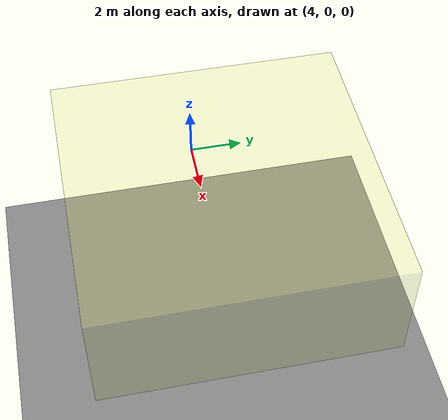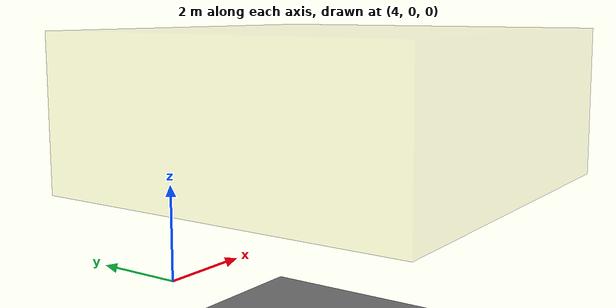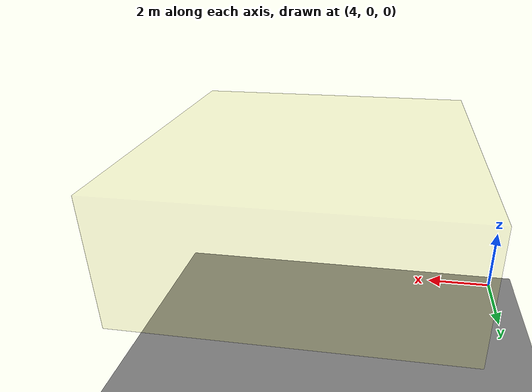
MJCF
<?xml version="1.0"?>
<!-- Aerial environment example with reduced gravity -->
<mujoco model="aerial">
  <option timestep="0.002" gravity="0 0 -2.0"/>

  <worldbody>
    <!-- Ground (far below) -->
    <geom name="ground" type="plane" size="50 50 0.1" pos="0 0 -5" rgba="0.5 0.5 0.5 1"/>

    <!-- Wind zones (visual markers) -->
    <geom name="wind_zone_1" type="box" size="5 5 2" pos="10 0 3"
          rgba="0.8 0.8 0.2 0.1" contype="0" conaffinity="0"/>
  </worldbody>
</mujoco>
